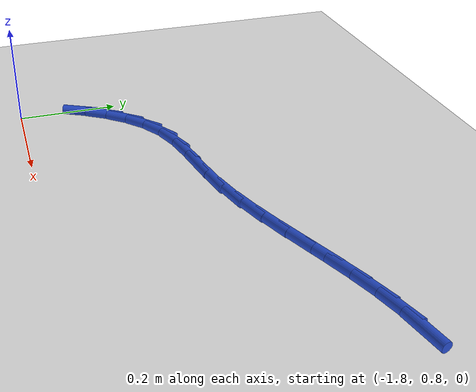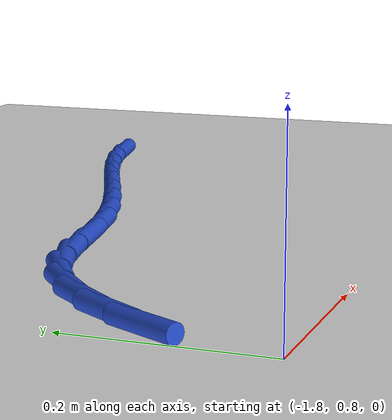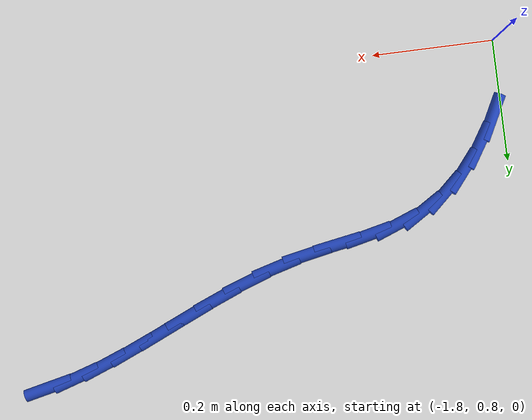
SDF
<sdf version="1.6">
 <world name="default">
  <model name="ground_plane">
   <static>1</static>
   <link name="link">
    <collision name="collision">
     <geometry><plane><normal>0 0 1</normal><size>100 100</size></plane></geometry>
     <surface><friction><ode><mu>100</mu><mu2>50</mu2></ode></friction></surface>
    </collision>
    <visual name="visual">
     <cast_shadows>0</cast_shadows>
     <geometry><plane><normal>0 0 1</normal><size>100 100</size></plane></geometry>
     <material>
      <script><uri>file://media/materials/scripts/gazebo.material</uri><name>Gazebo/WhiteGlow</name></script>
     </material>
    </visual>
   </link>
  </model>
  <model name="line">
   <link name="link_34">
    <pose>-1.0066093708612658 1.275602386335011 0.01 0 1.57 0.22198942262711954</pose>
    <collision name="collision">
     <geometry><cylinder><radius>0.01</radius><length>0.08</length></cylinder></geometry>
    </collision>
    <visual name="visual">
     <material>
      <script><name>Gazebo/Blue</name><uri>file://media/materials/scripts/gazebo.material</uri></script>
     </material>
     <geometry><cylinder><radius>0.01</radius><length>0.08</length></cylinder></geometry>
    </visual>
   </link>
   <link name="link_35">
    <pose>-1.0538300738862896 1.264944236446754 0.01 0 1.57 0.30990920765176827</pose>
    <collision name="collision">
     <geometry><cylinder><radius>0.01</radius><length>0.08</length></cylinder></geometry>
    </collision>
    <visual name="visual">
     <material>
      <script><name>Gazebo/Blue</name><uri>file://media/materials/scripts/gazebo.material</uri></script>
     </material>
     <geometry><cylinder><radius>0.01</radius><length>0.08</length></cylinder></geometry>
    </visual>
   </link>
   <link name="link_36">
    <pose>-1.1015244800258608 1.2496711807996874 0.01 0 1.57 0.3702122707655162</pose>
    <collision name="collision">
     <geometry><cylinder><radius>0.01</radius><length>0.08</length></cylinder></geometry>
    </collision>
    <visual name="visual">
     <material>
      <script><name>Gazebo/Blue</name><uri>file://media/materials/scripts/gazebo.material</uri></script>
     </material>
     <geometry><cylinder><radius>0.01</radius><length>0.08</length></cylinder></geometry>
    </visual>
   </link>
   <link name="link_37">
    <pose>-1.1497251416383534 1.2309641480136317 0.01 0 1.57 0.40613458403579866</pose>
    <collision name="collision">
     <geometry><cylinder><radius>0.01</radius><length>0.08</length></cylinder></geometry>
    </collision>
    <visual name="visual">
     <material>
      <script><name>Gazebo/Blue</name><uri>file://media/materials/scripts/gazebo.material</uri></script>
     </material>
     <geometry><cylinder><radius>0.01</radius><length>0.08</length></cylinder></geometry>
    </visual>
   </link>
   <link name="link_38">
    <pose>-1.1984646110821398 1.2100040667084075 0.01 0 1.57 0.4201916904959871</pose>
    <collision name="collision">
     <geometry><cylinder><radius>0.01</radius><length>0.08</length></cylinder></geometry>
    </collision>
    <visual name="visual">
     <material>
      <script><name>Gazebo/Blue</name><uri>file://media/materials/scripts/gazebo.material</uri></script>
     </material>
     <geometry><cylinder><radius>0.01</radius><length>0.08</length></cylinder></geometry>
    </visual>
   </link>
   <link name="link_39">
    <pose>-1.2477754407155939 1.187971865503835 0.01 0 1.57 0.413850504690845</pose>
    <collision name="collision">
     <geometry><cylinder><radius>0.01</radius><length>0.08</length></cylinder></geometry>
    </collision>
    <visual name="visual">
     <material>
      <script><name>Gazebo/Blue</name><uri>file://media/materials/scripts/gazebo.material</uri></script>
     </material>
     <geometry><cylinder><radius>0.01</radius><length>0.08</length></cylinder></geometry>
    </visual>
   </link>
   <link name="link_40">
    <pose>-1.2976901828970884 1.1660484730197351 0.01 0 1.57 0.3875324435079767</pose>
    <collision name="collision">
     <geometry><cylinder><radius>0.01</radius><length>0.08</length></cylinder></geometry>
    </collision>
    <visual name="visual">
     <material>
      <script><name>Gazebo/Blue</name><uri>file://media/materials/scripts/gazebo.material</uri></script>
     </material>
     <geometry><cylinder><radius>0.01</radius><length>0.08</length></cylinder></geometry>
    </visual>
   </link>
   <link name="link_41">
    <pose>-1.3482413899849963 1.1454148178759276 0.01 0 1.57 0.34077208446727003</pose>
    <collision name="collision">
     <geometry><cylinder><radius>0.01</radius><length>0.08</length></cylinder></geometry>
    </collision>
    <visual name="visual">
     <material>
      <script><name>Gazebo/Blue</name><uri>file://media/materials/scripts/gazebo.material</uri></script>
     </material>
     <geometry><cylinder><radius>0.01</radius><length>0.08</length></cylinder></geometry>
    </visual>
   </link>
   <link name="link_42">
    <pose>-1.3994616143376908 1.1272518286922328 0.01 0 1.57 0.2725316518254183</pose>
    <collision name="collision">
     <geometry><cylinder><radius>0.01</radius><length>0.08</length></cylinder></geometry>
    </collision>
    <visual name="visual">
     <material>
      <script><name>Gazebo/Blue</name><uri>file://media/materials/scripts/gazebo.material</uri></script>
     </material>
     <geometry><cylinder><radius>0.01</radius><length>0.08</length></cylinder></geometry>
    </visual>
   </link>
   <link name="link_43">
    <pose>-1.4513834083135457 1.112740434088472 0.01 0 1.57 0.19591030809090093</pose>
    <collision name="collision">
     <geometry><cylinder><radius>0.01</radius><length>0.08</length></cylinder></geometry>
    </collision>
    <visual name="visual">
     <material>
      <script><name>Gazebo/Blue</name><uri>file://media/materials/scripts/gazebo.material</uri></script>
     </material>
     <geometry><cylinder><radius>0.01</radius><length>0.08</length></cylinder></geometry>
    </visual>
   </link>
   <link name="link_44">
    <pose>-1.5037814707765587 1.1023417349070572 0.01 0 1.57 0.17346217587245516</pose>
    <collision name="collision">
     <geometry><cylinder><radius>0.01</radius><length>0.08</length></cylinder></geometry>
    </collision>
    <visual name="visual">
     <material>
      <script><name>Gazebo/Blue</name><uri>file://media/materials/scripts/gazebo.material</uri></script>
     </material>
     <geometry><cylinder><radius>0.01</radius><length>0.08</length></cylinder></geometry>
    </visual>
   </link>
   <link name="link_45">
    <pose>-1.5552843560217884 1.093317237198611 0.01 0 1.57 0.22657988994246744</pose>
    <collision name="collision">
     <geometry><cylinder><radius>0.01</radius><length>0.08</length></cylinder></geometry>
    </collision>
    <visual name="visual">
     <material>
      <script><name>Gazebo/Blue</name><uri>file://media/materials/scripts/gazebo.material</uri></script>
     </material>
     <geometry><cylinder><radius>0.01</radius><length>0.08</length></cylinder></geometry>
    </visual>
   </link>
   <link name="link_46">
    <pose>-1.6042022791810313 1.0820397665135777 0.01 0 1.57 0.36633878095691547</pose>
    <collision name="collision">
     <geometry><cylinder><radius>0.01</radius><length>0.08</length></cylinder></geometry>
    </collision>
    <visual name="visual">
     <material>
      <script><name>Gazebo/Blue</name><uri>file://media/materials/scripts/gazebo.material</uri></script>
     </material>
     <geometry><cylinder><radius>0.01</radius><length>0.08</length></cylinder></geometry>
    </visual>
   </link>
   <link name="link_47">
    <pose>-1.6488576826133392 1.0649074034522743 0.01 0 1.57 0.5626558504823563</pose>
    <collision name="collision">
     <geometry><cylinder><radius>0.01</radius><length>0.08</length></cylinder></geometry>
    </collision>
    <visual name="visual">
     <material>
      <script><name>Gazebo/Blue</name><uri>file://media/materials/scripts/gazebo.material</uri></script>
     </material>
     <geometry><cylinder><radius>0.01</radius><length>0.08</length></cylinder></geometry>
    </visual>
   </link>
   <link name="link_48">
    <pose>-1.6883788100728876 1.0399831874981553 0.01 0 1.57 0.7431528773780378</pose>
    <collision name="collision">
     <geometry><cylinder><radius>0.01</radius><length>0.08</length></cylinder></geometry>
    </collision>
    <visual name="visual">
     <material>
      <script><name>Gazebo/Blue</name><uri>file://media/materials/scripts/gazebo.material</uri></script>
     </material>
     <geometry><cylinder><radius>0.01</radius><length>0.08</length></cylinder></geometry>
    </visual>
   </link>
   <link name="link_49">
    <pose>-1.7231857931687031 1.0079994761241602 0.01 0 1.57 0.8932933806143348</pose>
    <collision name="collision">
     <geometry><cylinder><radius>0.01</radius><length>0.08</length></cylinder></geometry>
    </collision>
    <visual name="visual">
     <material>
      <script><name>Gazebo/Blue</name><uri>file://media/materials/scripts/gazebo.material</uri></script>
     </material>
     <geometry><cylinder><radius>0.01</radius><length>0.08</length></cylinder></geometry>
    </visual>
   </link>
   <link name="link_50">
    <pose>-1.753815062928314 0.9699289263995137 0.01 0 1.57 1.0122381327909464</pose>
    <collision name="collision">
     <geometry><cylinder><radius>0.01</radius><length>0.08</length></cylinder></geometry>
    </collision>
    <visual name="visual">
     <material>
      <script><name>Gazebo/Blue</name><uri>file://media/materials/scripts/gazebo.material</uri></script>
     </material>
     <geometry><cylinder><radius>0.01</radius><length>0.08</length></cylinder></geometry>
    </visual>
   </link>
   <link name="link_51">
    <pose>-1.7808030503792458 0.9267441953934396 0.01 0 1.57 1.1034366268510836</pose>
    <collision name="collision">
     <geometry><cylinder><radius>0.01</radius><length>0.08</length></cylinder></geometry>
    </collision>
    <visual name="visual">
     <material>
      <script><name>Gazebo/Blue</name><uri>file://media/materials/scripts/gazebo.material</uri></script>
     </material>
     <geometry><cylinder><radius>0.01</radius><length>0.08</length></cylinder></geometry>
    </visual>
   </link>
  </model>
 </world>
</sdf>
